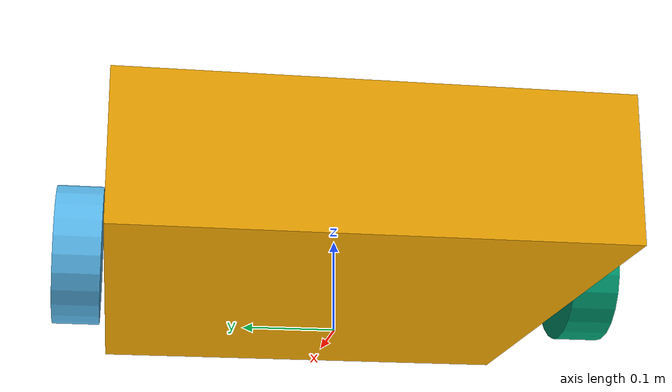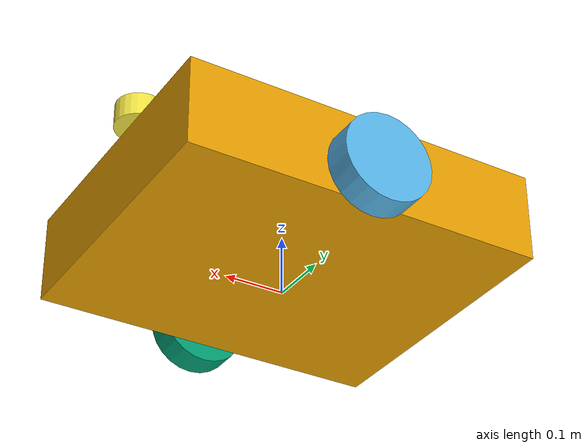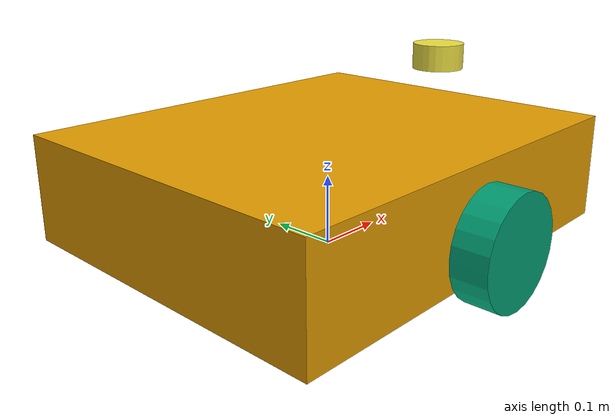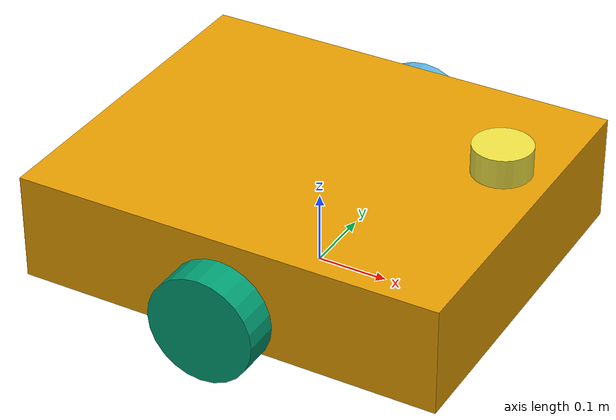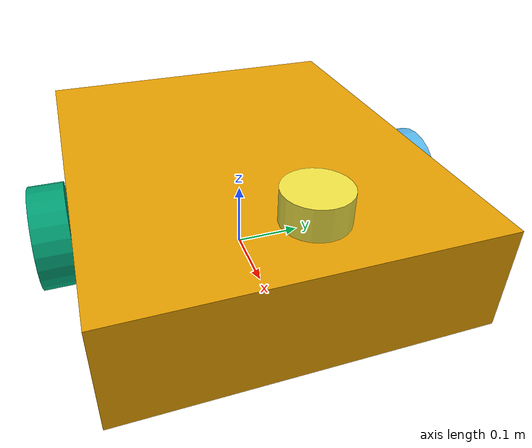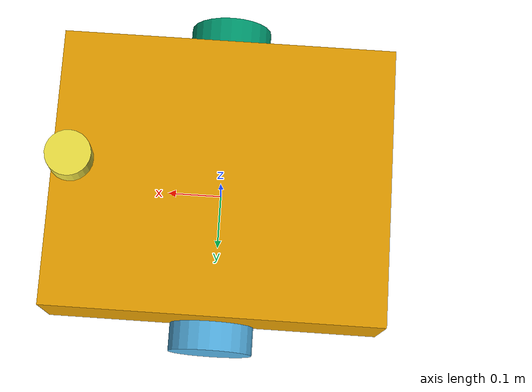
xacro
<?xml version="1.0"?>

<robot xmlns:xacro="http://www.ros.org/wiki/xacro"
       name="leader_robot">

    <!-- Base Link -->

    <link name="base_link">

        <visual>
            <geometry>
                <box size="0.60 0.50 0.15"/>
            </geometry>

            <origin xyz="0 0 0.10"
                    rpy="0 0 0"/>
        </visual>

        <collision>
            <geometry>
                <box size="0.60 0.50 0.15"/>
            </geometry>

            <origin xyz="0 0 0.10"
                    rpy="0 0 0"/>
        </collision>

    </link>

    <!-- Left Wheel -->

    <link name="left_wheel">

        <visual>
            <geometry>
                <cylinder radius="0.075"
                          length="0.05"/>
            </geometry>

            <origin xyz="0 0 0"
                    rpy="1.5708 0 0"/>
        </visual>

    </link>

    <joint name="left_wheel_joint"
           type="continuous">

        <parent link="base_link"/>
        <child link="left_wheel"/>

        <origin xyz="0 0.280 0.075"
                rpy="0 0 0"/>

        <axis xyz="0 1 0"/>

    </joint>

    <!-- Right Wheel -->

    <link name="right_wheel">

        <visual>
            <geometry>
                <cylinder radius="0.075"
                          length="0.05"/>
            </geometry>

            <origin xyz="0 0 0"
                    rpy="1.5708 0 0"/>
        </visual>

    </link>

    <joint name="right_wheel_joint"
           type="continuous">

        <parent link="base_link"/>
        <child link="right_wheel"/>

        <origin xyz="0 -0.280 0.075"
                rpy="0 0 0"/>

        <axis xyz="0 1 0"/>

    </joint>

    <!-- LiDAR -->

    <link name="laser">

        <visual>
            <geometry>
                <cylinder radius="0.04"
                          length="0.04"/>
            </geometry>

            <origin xyz="0 0 0"
                    rpy="0 0 0"/>
        </visual>

    </link>

    <joint name="laser_joint"
           type="fixed">

        <parent link="base_link"/>
        <child link="laser"/>

        <!-- Measured scan center: x=0.26m, centered, ground height=0.24m. Yaw pending physical confirmation. -->
        <origin xyz="0.26 0 0.24"
                rpy="0 0 3.14159265359"/>

    </joint>

    <!-- IMU -->

    <link name="imu_link">

        <visual>
            <geometry>
                <box size="0.05 0.04 0.02"/>
            </geometry>

            <origin xyz="0 0 0"
                    rpy="0 0 0"/>
        </visual>

    </link>

    <joint name="imu_joint"
           type="fixed">

        <parent link="base_link"/>
        <child link="imu_link"/>

        <!-- 임시 IMU 위치 -->
        <origin xyz="0 0 0.15"
                rpy="0 0 0"/>

    </joint>

</robot>
